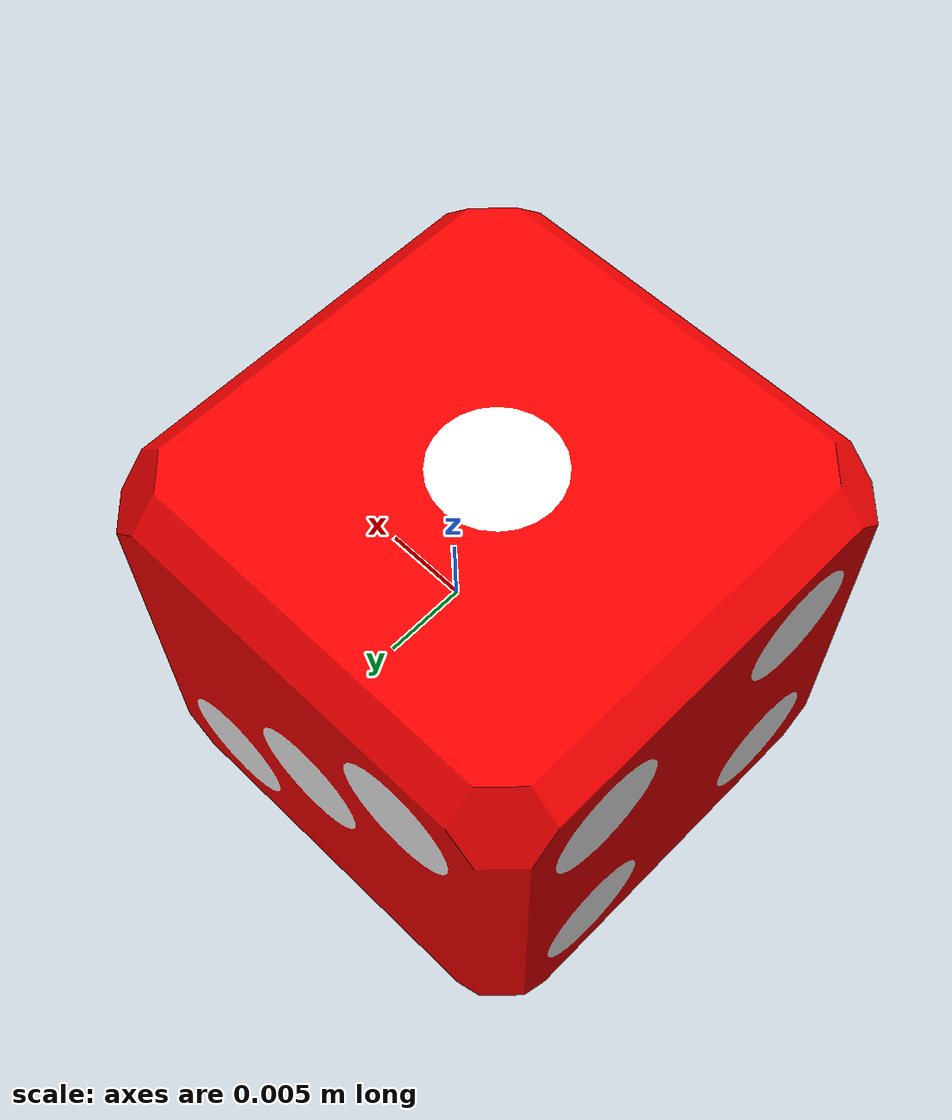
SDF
<?xml version="1.0" ?>
<sdf version="1.5">
	<model name="redDie">
		<static>false</static>
		<link name="link">
			<gravity>true</gravity>
			<enable_wind>true</enable_wind>
			<self_collide>false</self_collide>
			<inertial>
				<mass>0.1</mass>
				<inertia>
					<ixx>0.012709375</ixx>
					<ixy>0.0</ixy>
					<ixz>0.0</ixz>
					<iyy>0.012709375</iyy>
					<iyz>0.0</iyz>
					<izz>0.012709375</izz>
				</inertia>
			</inertial>
			<collision name="collision">
				<geometry>
					<mesh>
						<uri>model://redDie/meshes/redDie.dae</uri>
						<scale>1.25 1.25 1.25</scale>
					</mesh>
				</geometry>
				<friction>
					<ode>
						<mu>0</mu>
						<mu2>0</mu2> <!-- Friction subject to change -->
					</ode>
				</friction>
			</collision>

			<visual name="visual">
				<cast_shadows>true</cast_shadows>
				<transparency>0</transparency>
				<geometry>
					<mesh>
						<uri>model://redDie/meshes/redDie.dae</uri>
						<scale>1.25 1.25 1.25</scale>
					</mesh>
				</geometry>
			</visual>
		</link>
	</model>
</sdf>
